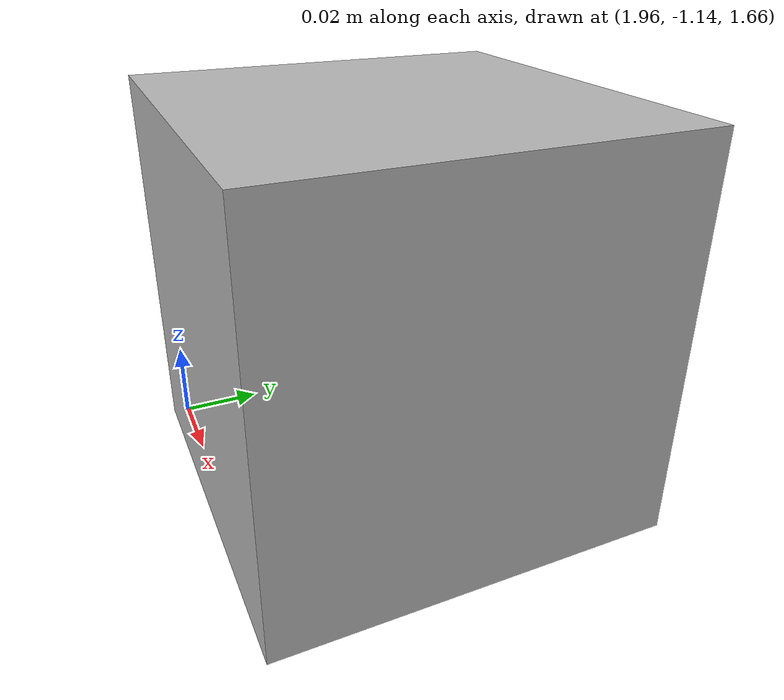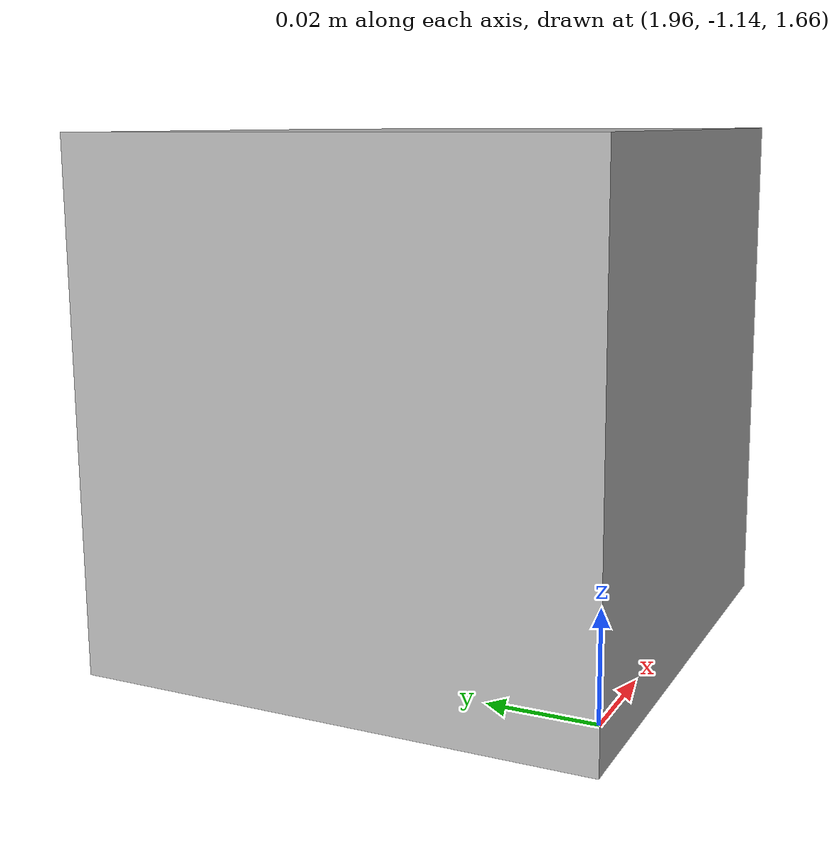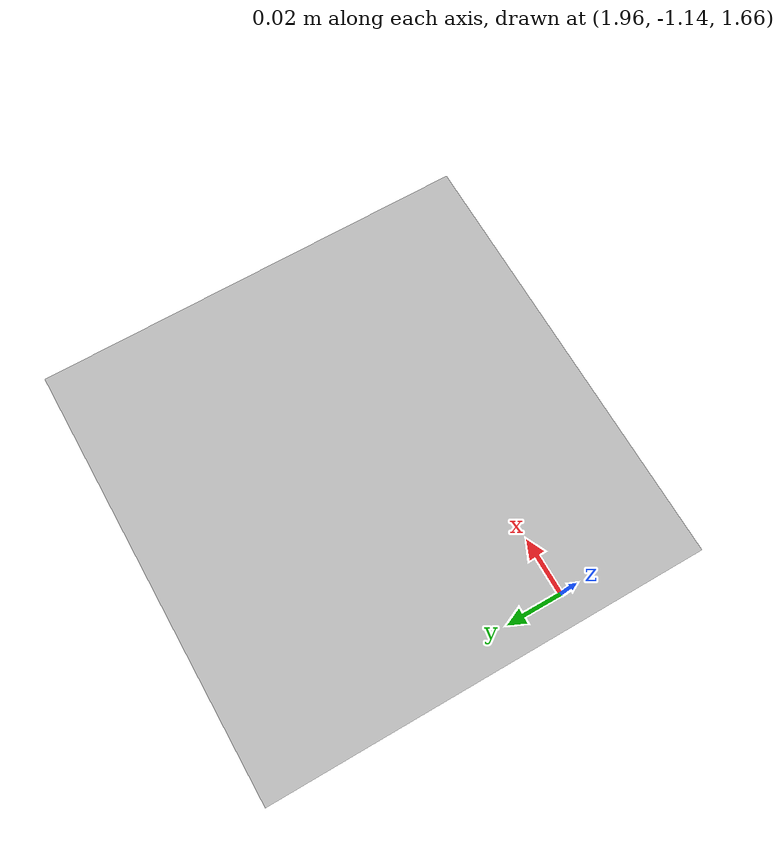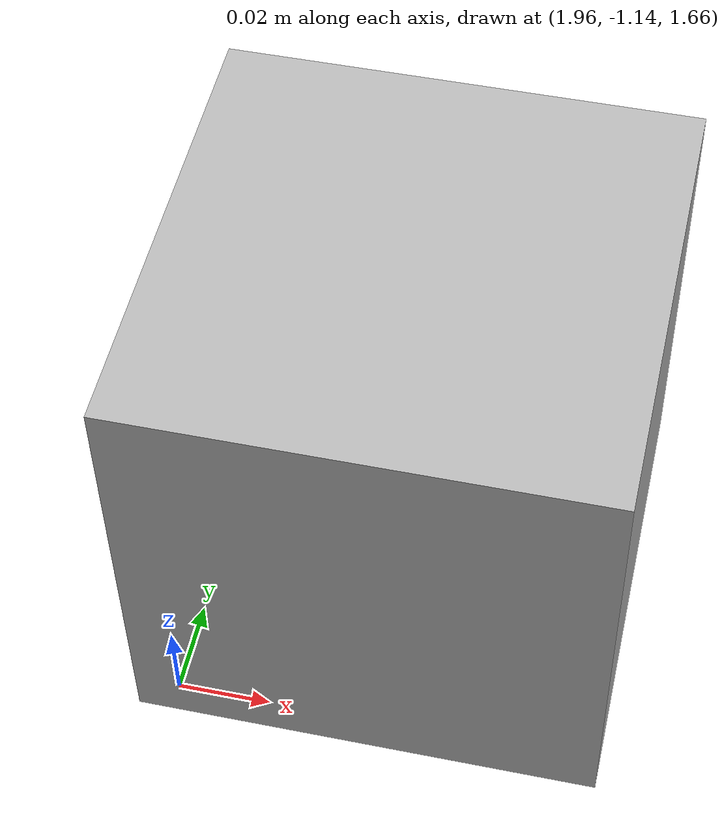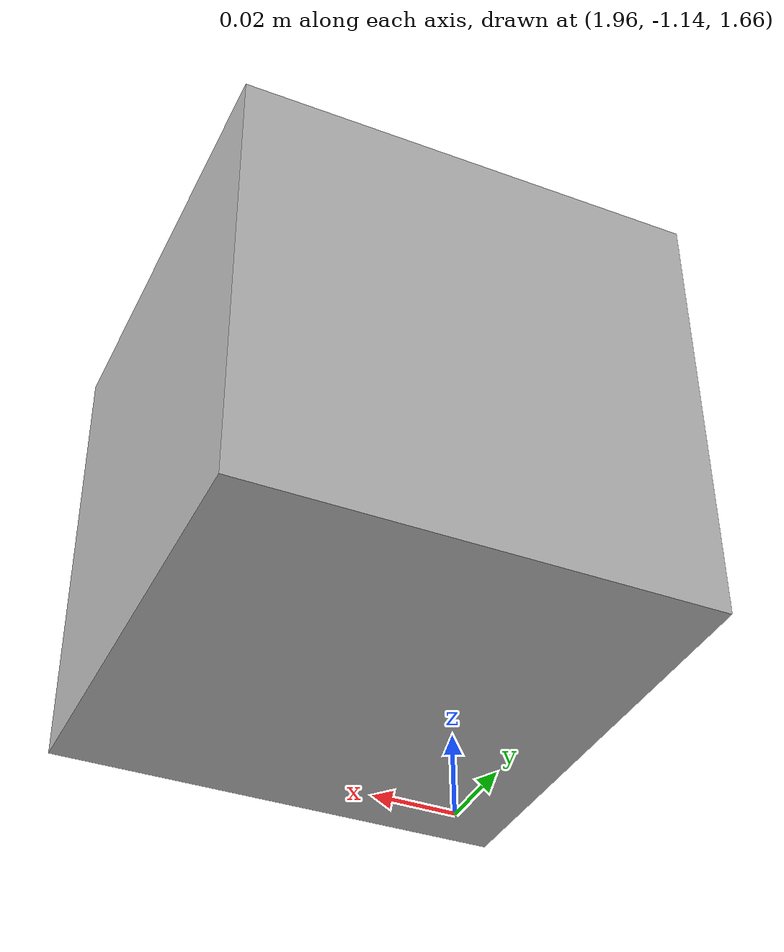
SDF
<?xml version="1.0" ?>
<sdf version="1.9">
  <model name="pacote C">
    <static>true</static> <!-- Define como false para que o objeto tenha física -->
    <link name="link_00">
      <pose>2 -1.1 1.68 -11 0 0</pose>

      <inertial>
        <mass>10.0</mass> <!-- Define a massa do objeto -->
        <inertia> <!-- Momento de inércia ajustado -->
          <ixx>0.4</ixx>
          <ixy>0.0</ixy> <!-- Componentes cruzadas de inércia zeradas -->
          <ixz>0.0</ixz>
          <iyy>0.4</iyy>
          <iyz>0.0</iyz>
          <izz>0.4</izz>
        </inertia>
      </inertial>
      <gravity>true</gravity>
      <collision name="collision">
        <geometry>
          <mesh>
            <uri>model://Pacote_C/meshes/pacote.obj</uri>
            <scale>1 1 1</scale>
          </mesh>
        </geometry>
        <surface>
          <friction>
            <ode>
              <mu>1.0</mu> <!-- Coeficiente de fricção -->
              <mu2>1.0</mu2>
            </ode>
          </friction>
        </surface>
      </collision>

      <visual name="visual">
        <geometry>
          <mesh>
            <uri>model://Pacote_C/meshes/pacote.obj</uri>
            <scale>1 1 1</scale>
          </mesh>
        </geometry>
      </visual>
    </link>
  </model>
</sdf>
